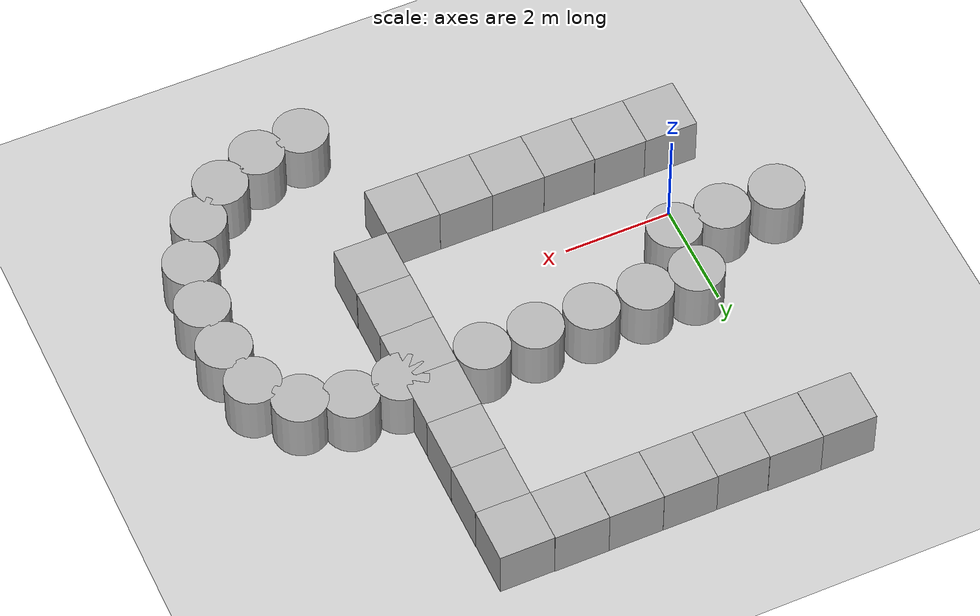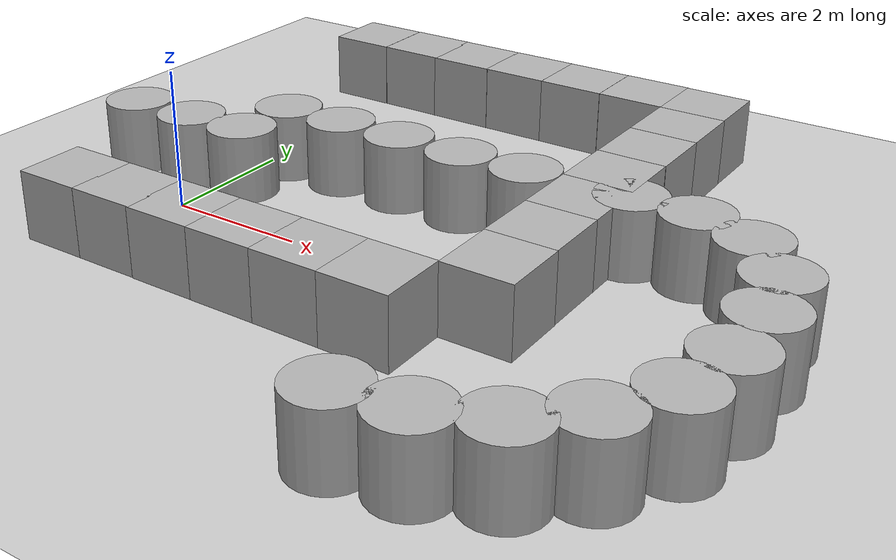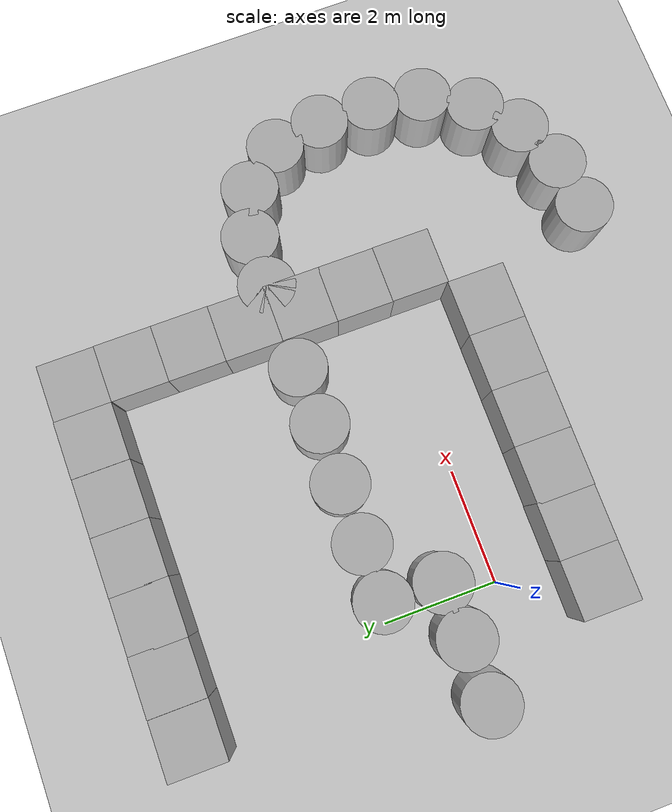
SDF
<sdf version='1.10'>
  <world name='training_world_2'>
    <physics name='1ms' type='ignored'>
      <max_step_size>0.001</max_step_size>
      <real_time_factor>1</real_time_factor>
      <real_time_update_rate>1000</real_time_update_rate>
    </physics>
    <plugin filename="gz-sim-physics-system" name="gz::sim::systems::Physics" />
    <plugin filename="gz-sim-user-commands-system" name="gz::sim::systems::UserCommands" />
    <plugin filename="gz-sim-scene-broadcaster-system" name="gz::sim::systems::SceneBroadcaster" />
    <plugin filename="gz-sim-physics-system" name="gz::sim::systems::Physics" />
    <plugin filename="gz-sim-user-commands-system" name="gz::sim::systems::UserCommands" />
    <plugin filename="gz-sim-scene-broadcaster-system" name="gz::sim::systems::SceneBroadcaster" />
    <plugin filename="gz-sim-sensors-system" name="gz::sim::systems::Sensors">
      <render_engine>ogre2</render_engine>
    </plugin>
    <gravity>0 0 -9.8000000000000007</gravity>
    <magnetic_field>5.5644999999999998e-06 2.2875799999999999e-05 -4.2388400000000002e-05</magnetic_field>
    <atmosphere type='adiabatic'/>
    <scene>
      <ambient>0.400000006 0.400000006 0.400000006 1</ambient>
      <background>0.699999988 0.699999988 0.699999988 1</background>
      <shadows>true</shadows>
    </scene>
    <model name='ground_plane'>
      <static>true</static>
      <link name='link'>
        <collision name='collision'>
          <geometry>
            <plane>
              <normal>0 0 1</normal>
              <size>100 100</size>
            </plane>
          </geometry>
          <surface>
            <friction>
              <ode/>
            </friction>
            <bounce/>
            <contact/>
          </surface>
        </collision>
        <visual name='visual'>
          <geometry>
            <plane>
              <normal>0 0 1</normal>
              <size>100 100</size>
            </plane>
          </geometry>
          <material>
            <ambient>0.800000012 0.800000012 0.800000012 1</ambient>
            <diffuse>0.800000012 0.800000012 0.800000012 1</diffuse>
            <specular>0.800000012 0.800000012 0.800000012 1</specular>
          </material>
        </visual>
        <pose>0 0 0 0 0 0</pose>
        <inertial>
          <pose>0 0 0 0 0 0</pose>
          <mass>1</mass>
          <inertia>
            <ixx>1</ixx>
            <ixy>0</ixy>
            <ixz>0</ixz>
            <iyy>1</iyy>
            <iyz>0</iyz>
            <izz>1</izz>
          </inertia>
        </inertial>
        <enable_wind>false</enable_wind>
      </link>
      <pose>0 0 0 0 0 0</pose>
      <self_collide>false</self_collide>
    </model>
    <model name='box'>
      <pose>5.4581699371337891 5.4841389656066895 0.5 0 0 0</pose>
      <link name='box_link'>
        <inertial>
          <inertia>
            <ixx>0.16666</ixx>
            <ixy>0</ixy>
            <ixz>0</ixz>
            <iyy>0.16666</iyy>
            <iyz>0</iyz>
            <izz>0.16666</izz>
          </inertia>
          <mass>1</mass>
          <pose>0 0 0 0 0 0</pose>
        </inertial>
        <collision name='box_collision'>
          <geometry>
            <box>
              <size>1 1 1</size>
            </box>
          </geometry>
          <surface>
            <friction>
              <ode/>
            </friction>
            <bounce/>
            <contact/>
          </surface>
        </collision>
        <visual name='box_visual'>
          <geometry>
            <box>
              <size>1 1 1</size>
            </box>
          </geometry>
          <material>
            <ambient>0.300000012 0.300000012 0.300000012 1</ambient>
            <diffuse>0.699999988 0.699999988 0.699999988 1</diffuse>
            <specular>1 1 1 1</specular>
          </material>
        </visual>
        <pose>0 0 0 0 0 0</pose>
        <enable_wind>false</enable_wind>
      </link>
      <static>false</static>
      <self_collide>false</self_collide>
    </model>
    <model name='box_0'>
      <pose>5.4631900787353516 4.4927797317504883 0.5 0 0 0</pose>
      <link name='box_link'>
        <inertial>
          <inertia>
            <ixx>0.16666</ixx>
            <ixy>0</ixy>
            <ixz>0</ixz>
            <iyy>0.16666</iyy>
            <iyz>0</iyz>
            <izz>0.16666</izz>
          </inertia>
          <mass>1</mass>
          <pose>0 0 0 0 0 0</pose>
        </inertial>
        <collision name='box_collision'>
          <geometry>
            <box>
              <size>1 1 1</size>
            </box>
          </geometry>
          <surface>
            <friction>
              <ode/>
            </friction>
            <bounce/>
            <contact/>
          </surface>
        </collision>
        <visual name='box_visual'>
          <geometry>
            <box>
              <size>1 1 1</size>
            </box>
          </geometry>
          <material>
            <ambient>0.300000012 0.300000012 0.300000012 1</ambient>
            <diffuse>0.699999988 0.699999988 0.699999988 1</diffuse>
            <specular>1 1 1 1</specular>
          </material>
        </visual>
        <pose>0 0 0 0 0 0</pose>
        <enable_wind>false</enable_wind>
      </link>
      <static>false</static>
      <self_collide>false</self_collide>
    </model>
    <model name='box_1'>
      <pose>5.4638900756835938 3.4942295551300049 0.5 0 0 0</pose>
      <link name='box_link'>
        <inertial>
          <inertia>
            <ixx>0.16666</ixx>
            <ixy>0</ixy>
            <ixz>0</ixz>
            <iyy>0.16666</iyy>
            <iyz>0</iyz>
            <izz>0.16666</izz>
          </inertia>
          <mass>1</mass>
          <pose>0 0 0 0 0 0</pose>
        </inertial>
        <collision name='box_collision'>
          <geometry>
            <box>
              <size>1 1 1</size>
            </box>
          </geometry>
          <surface>
            <friction>
              <ode/>
            </friction>
            <bounce/>
            <contact/>
          </surface>
        </collision>
        <visual name='box_visual'>
          <geometry>
            <box>
              <size>1 1 1</size>
            </box>
          </geometry>
          <material>
            <ambient>0.300000012 0.300000012 0.300000012 1</ambient>
            <diffuse>0.699999988 0.699999988 0.699999988 1</diffuse>
            <specular>1 1 1 1</specular>
          </material>
        </visual>
        <pose>0 0 0 0 0 0</pose>
        <enable_wind>false</enable_wind>
      </link>
      <static>false</static>
      <self_collide>false</self_collide>
    </model>
    <model name='box_2'>
      <pose>5.4597768783569336 2.4960799217224121 0.5 0 0 0</pose>
      <link name='box_link'>
        <inertial>
          <inertia>
            <ixx>0.16666</ixx>
            <ixy>0</ixy>
            <ixz>0</ixz>
            <iyy>0.16666</iyy>
            <iyz>0</iyz>
            <izz>0.16666</izz>
          </inertia>
          <mass>1</mass>
          <pose>0 0 0 0 0 0</pose>
        </inertial>
        <collision name='box_collision'>
          <geometry>
            <box>
              <size>1 1 1</size>
            </box>
          </geometry>
          <surface>
            <friction>
              <ode/>
            </friction>
            <bounce/>
            <contact/>
          </surface>
        </collision>
        <visual name='box_visual'>
          <geometry>
            <box>
              <size>1 1 1</size>
            </box>
          </geometry>
          <material>
            <ambient>0.300000012 0.300000012 0.300000012 1</ambient>
            <diffuse>0.699999988 0.699999988 0.699999988 1</diffuse>
            <specular>1 1 1 1</specular>
          </material>
        </visual>
        <pose>0 0 0 0 0 0</pose>
        <enable_wind>false</enable_wind>
      </link>
      <static>false</static>
      <self_collide>false</self_collide>
    </model>
    <model name='box_3'>
      <pose>5.4643087387084961 1.5090999603271484 0.5 0 0 0</pose>
      <link name='box_link'>
        <inertial>
          <inertia>
            <ixx>0.16666</ixx>
            <ixy>0</ixy>
            <ixz>0</ixz>
            <iyy>0.16666</iyy>
            <iyz>0</iyz>
            <izz>0.16666</izz>
          </inertia>
          <mass>1</mass>
          <pose>0 0 0 0 0 0</pose>
        </inertial>
        <collision name='box_collision'>
          <geometry>
            <box>
              <size>1 1 1</size>
            </box>
          </geometry>
          <surface>
            <friction>
              <ode/>
            </friction>
            <bounce/>
            <contact/>
          </surface>
        </collision>
        <visual name='box_visual'>
          <geometry>
            <box>
              <size>1 1 1</size>
            </box>
          </geometry>
          <material>
            <ambient>0.300000012 0.300000012 0.300000012 1</ambient>
            <diffuse>0.699999988 0.699999988 0.699999988 1</diffuse>
            <specular>1 1 1 1</specular>
          </material>
        </visual>
        <pose>0 0 0 0 0 0</pose>
        <enable_wind>false</enable_wind>
      </link>
      <static>false</static>
      <self_collide>false</self_collide>
    </model>
    <model name='box_4'>
      <pose>5.4652209281921387 0.52163499593734741 0.5 0 0 0</pose>
      <link name='box_link'>
        <inertial>
          <inertia>
            <ixx>0.16666</ixx>
            <ixy>0</ixy>
            <ixz>0</ixz>
            <iyy>0.16666</iyy>
            <iyz>0</iyz>
            <izz>0.16666</izz>
          </inertia>
          <mass>1</mass>
          <pose>0 0 0 0 0 0</pose>
        </inertial>
        <collision name='box_collision'>
          <geometry>
            <box>
              <size>1 1 1</size>
            </box>
          </geometry>
          <surface>
            <friction>
              <ode/>
            </friction>
            <bounce/>
            <contact/>
          </surface>
        </collision>
        <visual name='box_visual'>
          <geometry>
            <box>
              <size>1 1 1</size>
            </box>
          </geometry>
          <material>
            <ambient>0.300000012 0.300000012 0.300000012 1</ambient>
            <diffuse>0.699999988 0.699999988 0.699999988 1</diffuse>
            <specular>1 1 1 1</specular>
          </material>
        </visual>
        <pose>0 0 0 0 0 0</pose>
        <enable_wind>false</enable_wind>
      </link>
      <static>false</static>
      <self_collide>false</self_collide>
    </model>
    <model name='box_5'>
      <pose>5.4709596873990716 -0.4662757997056175 0.5 0 0 0</pose>
      <link name='box_link'>
        <inertial>
          <inertia>
            <ixx>0.16666</ixx>
            <ixy>0</ixy>
            <ixz>0</ixz>
            <iyy>0.16666</iyy>
            <iyz>0</iyz>
            <izz>0.16666</izz>
          </inertia>
          <mass>1</mass>
          <pose>0 0 0 0 0 0</pose>
        </inertial>
        <collision name='box_collision'>
          <geometry>
            <box>
              <size>1 1 1</size>
            </box>
          </geometry>
          <surface>
            <friction>
              <ode/>
            </friction>
            <bounce/>
            <contact/>
          </surface>
        </collision>
        <visual name='box_visual'>
          <geometry>
            <box>
              <size>1 1 1</size>
            </box>
          </geometry>
          <material>
            <ambient>0.300000012 0.300000012 0.300000012 1</ambient>
            <diffuse>0.699999988 0.699999988 0.699999988 1</diffuse>
            <specular>1 1 1 1</specular>
          </material>
        </visual>
        <pose>0 0 0 0 0 0</pose>
        <enable_wind>false</enable_wind>
      </link>
      <static>false</static>
      <self_collide>false</self_collide>
    </model>
    <model name='cylinder'>
      <pose>4.4554517501128323 1.9124957976703625 0.5 0 0 0</pose>
      <link name='cylinder_link'>
        <inertial>
          <inertia>
            <ixx>0.14580000000000001</ixx>
            <ixy>0</ixy>
            <ixz>0</ixz>
            <iyy>0.14580000000000001</iyy>
            <iyz>0</iyz>
            <izz>0.125</izz>
          </inertia>
          <mass>1</mass>
          <pose>0 0 0 0 0 0</pose>
        </inertial>
        <collision name='cylinder_collision'>
          <geometry>
            <cylinder>
              <radius>0.5</radius>
              <length>1</length>
            </cylinder>
          </geometry>
          <surface>
            <friction>
              <ode/>
            </friction>
            <bounce/>
            <contact/>
          </surface>
        </collision>
        <visual name='cylinder_visual'>
          <geometry>
            <cylinder>
              <radius>0.5</radius>
              <length>1</length>
            </cylinder>
          </geometry>
          <material>
            <ambient>0.300000012 0.300000012 0.300000012 1</ambient>
            <diffuse>0.699999988 0.699999988 0.699999988 1</diffuse>
            <specular>1 1 1 1</specular>
          </material>
        </visual>
        <pose>0 0 0 0 0 0</pose>
        <enable_wind>false</enable_wind>
      </link>
      <static>false</static>
      <self_collide>false</self_collide>
    </model>
    <model name='cylinder_0'>
      <pose>3.4485441728371855 1.8964423320753052 0.5 0 0 0</pose>
      <link name='cylinder_link'>
        <inertial>
          <inertia>
            <ixx>0.14580000000000001</ixx>
            <ixy>0</ixy>
            <ixz>0</ixz>
            <iyy>0.14580000000000001</iyy>
            <iyz>0</iyz>
            <izz>0.125</izz>
          </inertia>
          <mass>1</mass>
          <pose>0 0 0 0 0 0</pose>
        </inertial>
        <collision name='cylinder_collision'>
          <geometry>
            <cylinder>
              <radius>0.5</radius>
              <length>1</length>
            </cylinder>
          </geometry>
          <surface>
            <friction>
              <ode/>
            </friction>
            <bounce/>
            <contact/>
          </surface>
        </collision>
        <visual name='cylinder_visual'>
          <geometry>
            <cylinder>
              <radius>0.5</radius>
              <length>1</length>
            </cylinder>
          </geometry>
          <material>
            <ambient>0.300000012 0.300000012 0.300000012 1</ambient>
            <diffuse>0.699999988 0.699999988 0.699999988 1</diffuse>
            <specular>1 1 1 1</specular>
          </material>
        </visual>
        <pose>0 0 0 0 0 0</pose>
        <enable_wind>false</enable_wind>
      </link>
      <static>false</static>
      <self_collide>false</self_collide>
    </model>
    <model name='cylinder_1'>
      <pose>2.4087780615857701 1.9221750231469297 0.5 0 0 0</pose>
      <link name='cylinder_link'>
        <inertial>
          <inertia>
            <ixx>0.14580000000000001</ixx>
            <ixy>0</ixy>
            <ixz>0</ixz>
            <iyy>0.14580000000000001</iyy>
            <iyz>0</iyz>
            <izz>0.125</izz>
          </inertia>
          <mass>1</mass>
          <pose>0 0 0 0 0 0</pose>
        </inertial>
        <collision name='cylinder_collision'>
          <geometry>
            <cylinder>
              <radius>0.5</radius>
              <length>1</length>
            </cylinder>
          </geometry>
          <surface>
            <friction>
              <ode/>
            </friction>
            <bounce/>
            <contact/>
          </surface>
        </collision>
        <visual name='cylinder_visual'>
          <geometry>
            <cylinder>
              <radius>0.5</radius>
              <length>1</length>
            </cylinder>
          </geometry>
          <material>
            <ambient>0.300000012 0.300000012 0.300000012 1</ambient>
            <diffuse>0.699999988 0.699999988 0.699999988 1</diffuse>
            <specular>1 1 1 1</specular>
          </material>
        </visual>
        <pose>0 0 0 0 0 0</pose>
        <enable_wind>false</enable_wind>
      </link>
      <static>false</static>
      <self_collide>false</self_collide>
    </model>
    <model name='cylinder_2'>
      <pose>1.3868667100823853 1.925149172541003 0.5 0 0 0</pose>
      <link name='cylinder_link'>
        <inertial>
          <inertia>
            <ixx>0.14580000000000001</ixx>
            <ixy>0</ixy>
            <ixz>0</ixz>
            <iyy>0.14580000000000001</iyy>
            <iyz>0</iyz>
            <izz>0.125</izz>
          </inertia>
          <mass>1</mass>
          <pose>0 0 0 0 0 0</pose>
        </inertial>
        <collision name='cylinder_collision'>
          <geometry>
            <cylinder>
              <radius>0.5</radius>
              <length>1</length>
            </cylinder>
          </geometry>
          <surface>
            <friction>
              <ode/>
            </friction>
            <bounce/>
            <contact/>
          </surface>
        </collision>
        <visual name='cylinder_visual'>
          <geometry>
            <cylinder>
              <radius>0.5</radius>
              <length>1</length>
            </cylinder>
          </geometry>
          <material>
            <ambient>0.300000012 0.300000012 0.300000012 1</ambient>
            <diffuse>0.699999988 0.699999988 0.699999988 1</diffuse>
            <specular>1 1 1 1</specular>
          </material>
        </visual>
        <pose>0 0 0 0 0 0</pose>
        <enable_wind>false</enable_wind>
      </link>
      <static>false</static>
      <self_collide>false</self_collide>
    </model>
    <model name='cylinder_3'>
      <pose>0.41709174741181654 1.9263099474258674 0.5 0 0 0</pose>
      <link name='cylinder_link'>
        <inertial>
          <inertia>
            <ixx>0.14580000000000001</ixx>
            <ixy>0</ixy>
            <ixz>0</ixz>
            <iyy>0.14580000000000001</iyy>
            <iyz>0</iyz>
            <izz>0.125</izz>
          </inertia>
          <mass>1</mass>
          <pose>0 0 0 0 0 0</pose>
        </inertial>
        <collision name='cylinder_collision'>
          <geometry>
            <cylinder>
              <radius>0.5</radius>
              <length>1</length>
            </cylinder>
          </geometry>
          <surface>
            <friction>
              <ode/>
            </friction>
            <bounce/>
            <contact/>
          </surface>
        </collision>
        <visual name='cylinder_visual'>
          <geometry>
            <cylinder>
              <radius>0.5</radius>
              <length>1</length>
            </cylinder>
          </geometry>
          <material>
            <ambient>0.300000012 0.300000012 0.300000012 1</ambient>
            <diffuse>0.699999988 0.699999988 0.699999988 1</diffuse>
            <specular>1 1 1 1</specular>
          </material>
        </visual>
        <pose>0 0 0 0 0 0</pose>
        <enable_wind>false</enable_wind>
      </link>
      <static>false</static>
      <self_collide>false</self_collide>
    </model>
    <model name='cylinder_4'>
      <pose>0.3703391205548483 0.92730228313493457 0.5 0 0 0</pose>
      <link name='cylinder_link'>
        <inertial>
          <inertia>
            <ixx>0.14580000000000001</ixx>
            <ixy>0</ixy>
            <ixz>0</ixz>
            <iyy>0.14580000000000001</iyy>
            <iyz>0</iyz>
            <izz>0.125</izz>
          </inertia>
          <mass>1</mass>
          <pose>0 0 0 0 0 0</pose>
        </inertial>
        <collision name='cylinder_collision'>
          <geometry>
            <cylinder>
              <radius>0.5</radius>
              <length>1</length>
            </cylinder>
          </geometry>
          <surface>
            <friction>
              <ode/>
            </friction>
            <bounce/>
            <contact/>
          </surface>
        </collision>
        <visual name='cylinder_visual'>
          <geometry>
            <cylinder>
              <radius>0.5</radius>
              <length>1</length>
            </cylinder>
          </geometry>
          <material>
            <ambient>0.300000012 0.300000012 0.300000012 1</ambient>
            <diffuse>0.699999988 0.699999988 0.699999988 1</diffuse>
            <specular>1 1 1 1</specular>
          </material>
        </visual>
        <pose>0 0 0 0 0 0</pose>
        <enable_wind>false</enable_wind>
      </link>
      <static>false</static>
      <self_collide>false</self_collide>
    </model>
    <model name='cylinder_5'>
      <pose>-0.56998879777424438 0.89742481543701791 0.5 0 0 0</pose>
      <link name='cylinder_link'>
        <inertial>
          <inertia>
            <ixx>0.14580000000000001</ixx>
            <ixy>0</ixy>
            <ixz>0</ixz>
            <iyy>0.14580000000000001</iyy>
            <iyz>0</iyz>
            <izz>0.125</izz>
          </inertia>
          <mass>1</mass>
          <pose>0 0 0 0 0 0</pose>
        </inertial>
        <collision name='cylinder_collision'>
          <geometry>
            <cylinder>
              <radius>0.5</radius>
              <length>1</length>
            </cylinder>
          </geometry>
          <surface>
            <friction>
              <ode/>
            </friction>
            <bounce/>
            <contact/>
          </surface>
        </collision>
        <visual name='cylinder_visual'>
          <geometry>
            <cylinder>
              <radius>0.5</radius>
              <length>1</length>
            </cylinder>
          </geometry>
          <material>
            <ambient>0.300000012 0.300000012 0.300000012 1</ambient>
            <diffuse>0.699999988 0.699999988 0.699999988 1</diffuse>
            <specular>1 1 1 1</specular>
          </material>
        </visual>
        <pose>0 0 0 0 0 0</pose>
        <enable_wind>false</enable_wind>
      </link>
      <static>false</static>
      <self_collide>false</self_collide>
    </model>
    <model name='cylinder_6'>
      <pose>-1.6162913897672011 0.8999573448537298 0.5 0 0 0</pose>
      <link name='cylinder_link'>
        <inertial>
          <inertia>
            <ixx>0.14580000000000001</ixx>
            <ixy>0</ixy>
            <ixz>0</ixz>
            <iyy>0.14580000000000001</iyy>
            <iyz>0</iyz>
            <izz>0.125</izz>
          </inertia>
          <mass>1</mass>
          <pose>0 0 0 0 0 0</pose>
        </inertial>
        <collision name='cylinder_collision'>
          <geometry>
            <cylinder>
              <radius>0.5</radius>
              <length>1</length>
            </cylinder>
          </geometry>
          <surface>
            <friction>
              <ode/>
            </friction>
            <bounce/>
            <contact/>
          </surface>
        </collision>
        <visual name='cylinder_visual'>
          <geometry>
            <cylinder>
              <radius>0.5</radius>
              <length>1</length>
            </cylinder>
          </geometry>
          <material>
            <ambient>0.300000012 0.300000012 0.300000012 1</ambient>
            <diffuse>0.699999988 0.699999988 0.699999988 1</diffuse>
            <specular>1 1 1 1</specular>
          </material>
        </visual>
        <pose>0 0 0 0 0 0</pose>
        <enable_wind>false</enable_wind>
      </link>
      <static>false</static>
      <self_collide>false</self_collide>
    </model>
    <model name='box_6'>
      <pose>4.4648757215538062 5.493034978154796 0.5 0 0 0</pose>
      <link name='box_link'>
        <inertial>
          <inertia>
            <ixx>0.16666</ixx>
            <ixy>0</ixy>
            <ixz>0</ixz>
            <iyy>0.16666</iyy>
            <iyz>0</iyz>
            <izz>0.16666</izz>
          </inertia>
          <mass>1</mass>
          <pose>0 0 0 0 0 0</pose>
        </inertial>
        <collision name='box_collision'>
          <geometry>
            <box>
              <size>1 1 1</size>
            </box>
          </geometry>
          <surface>
            <friction>
              <ode/>
            </friction>
            <bounce/>
            <contact/>
          </surface>
        </collision>
        <visual name='box_visual'>
          <geometry>
            <box>
              <size>1 1 1</size>
            </box>
          </geometry>
          <material>
            <ambient>0.300000012 0.300000012 0.300000012 1</ambient>
            <diffuse>0.699999988 0.699999988 0.699999988 1</diffuse>
            <specular>1 1 1 1</specular>
          </material>
        </visual>
        <pose>0 0 0 0 0 0</pose>
        <enable_wind>false</enable_wind>
      </link>
      <static>false</static>
      <self_collide>false</self_collide>
    </model>
    <model name='box_7'>
      <pose>3.4632440258760084 5.4899634818289869 0.5 0 0 0</pose>
      <link name='box_link'>
        <inertial>
          <inertia>
            <ixx>0.16666</ixx>
            <ixy>0</ixy>
            <ixz>0</ixz>
            <iyy>0.16666</iyy>
            <iyz>0</iyz>
            <izz>0.16666</izz>
          </inertia>
          <mass>1</mass>
          <pose>0 0 0 0 0 0</pose>
        </inertial>
        <collision name='box_collision'>
          <geometry>
            <box>
              <size>1 1 1</size>
            </box>
          </geometry>
          <surface>
            <friction>
              <ode/>
            </friction>
            <bounce/>
            <contact/>
          </surface>
        </collision>
        <visual name='box_visual'>
          <geometry>
            <box>
              <size>1 1 1</size>
            </box>
          </geometry>
          <material>
            <ambient>0.300000012 0.300000012 0.300000012 1</ambient>
            <diffuse>0.699999988 0.699999988 0.699999988 1</diffuse>
            <specular>1 1 1 1</specular>
          </material>
        </visual>
        <pose>0 0 0 0 0 0</pose>
        <enable_wind>false</enable_wind>
      </link>
      <static>false</static>
      <self_collide>false</self_collide>
    </model>
    <model name='box_8'>
      <pose>2.4627367185550568 5.4916019275185874 0.5 0 0 0</pose>
      <link name='box_link'>
        <inertial>
          <inertia>
            <ixx>0.16666</ixx>
            <ixy>0</ixy>
            <ixz>0</ixz>
            <iyy>0.16666</iyy>
            <iyz>0</iyz>
            <izz>0.16666</izz>
          </inertia>
          <mass>1</mass>
          <pose>0 0 0 0 0 0</pose>
        </inertial>
        <collision name='box_collision'>
          <geometry>
            <box>
              <size>1 1 1</size>
            </box>
          </geometry>
          <surface>
            <friction>
              <ode/>
            </friction>
            <bounce/>
            <contact/>
          </surface>
        </collision>
        <visual name='box_visual'>
          <geometry>
            <box>
              <size>1 1 1</size>
            </box>
          </geometry>
          <material>
            <ambient>0.300000012 0.300000012 0.300000012 1</ambient>
            <diffuse>0.699999988 0.699999988 0.699999988 1</diffuse>
            <specular>1 1 1 1</specular>
          </material>
        </visual>
        <pose>0 0 0 0 0 0</pose>
        <enable_wind>false</enable_wind>
      </link>
      <static>false</static>
      <self_collide>false</self_collide>
    </model>
    <model name='box_9'>
      <pose>1.4774800539016724 5.4889726638793945 0.5 0 0 0</pose>
      <link name='box_link'>
        <inertial>
          <inertia>
            <ixx>0.16666</ixx>
            <ixy>0</ixy>
            <ixz>0</ixz>
            <iyy>0.16666</iyy>
            <iyz>0</iyz>
            <izz>0.16666</izz>
          </inertia>
          <mass>1</mass>
          <pose>0 0 0 0 0 0</pose>
        </inertial>
        <collision name='box_collision'>
          <geometry>
            <box>
              <size>1 1 1</size>
            </box>
          </geometry>
          <surface>
            <friction>
              <ode/>
            </friction>
            <bounce/>
            <contact/>
          </surface>
        </collision>
        <visual name='box_visual'>
          <geometry>
            <box>
              <size>1 1 1</size>
            </box>
          </geometry>
          <material>
            <ambient>0.300000012 0.300000012 0.300000012 1</ambient>
            <diffuse>0.699999988 0.699999988 0.699999988 1</diffuse>
            <specular>1 1 1 1</specular>
          </material>
        </visual>
        <pose>0 0 0 0 0 0</pose>
        <enable_wind>false</enable_wind>
      </link>
      <static>false</static>
      <self_collide>false</self_collide>
    </model>
    <model name='box_10'>
      <pose>0.50613301992416382 5.4943976402282715 0.5 0 0 0</pose>
      <link name='box_link'>
        <inertial>
          <inertia>
            <ixx>0.16666</ixx>
            <ixy>0</ixy>
            <ixz>0</ixz>
            <iyy>0.16666</iyy>
            <iyz>0</iyz>
            <izz>0.16666</izz>
          </inertia>
          <mass>1</mass>
          <pose>0 0 0 0 0 0</pose>
        </inertial>
        <collision name='box_collision'>
          <geometry>
            <box>
              <size>1 1 1</size>
            </box>
          </geometry>
          <surface>
            <friction>
              <ode/>
            </friction>
            <bounce/>
            <contact/>
          </surface>
        </collision>
        <visual name='box_visual'>
          <geometry>
            <box>
              <size>1 1 1</size>
            </box>
          </geometry>
          <material>
            <ambient>0.300000012 0.300000012 0.300000012 1</ambient>
            <diffuse>0.699999988 0.699999988 0.699999988 1</diffuse>
            <specular>1 1 1 1</specular>
          </material>
        </visual>
        <pose>0 0 0 0 0 0</pose>
        <enable_wind>false</enable_wind>
      </link>
      <static>false</static>
      <self_collide>false</self_collide>
    </model>
    <model name='box_11'>
      <pose>-0.49575165521187309 5.490258511836406 0.5 0 0 0</pose>
      <link name='box_link'>
        <inertial>
          <inertia>
            <ixx>0.16666</ixx>
            <ixy>0</ixy>
            <ixz>0</ixz>
            <iyy>0.16666</iyy>
            <iyz>0</iyz>
            <izz>0.16666</izz>
          </inertia>
          <mass>1</mass>
          <pose>0 0 0 0 0 0</pose>
        </inertial>
        <collision name='box_collision'>
          <geometry>
            <box>
              <size>1 1 1</size>
            </box>
          </geometry>
          <surface>
            <friction>
              <ode/>
            </friction>
            <bounce/>
            <contact/>
          </surface>
        </collision>
        <visual name='box_visual'>
          <geometry>
            <box>
              <size>1 1 1</size>
            </box>
          </geometry>
          <material>
            <ambient>0.300000012 0.300000012 0.300000012 1</ambient>
            <diffuse>0.699999988 0.699999988 0.699999988 1</diffuse>
            <specular>1 1 1 1</specular>
          </material>
        </visual>
        <pose>0 0 0 0 0 0</pose>
        <enable_wind>false</enable_wind>
      </link>
      <static>false</static>
      <self_collide>false</self_collide>
    </model>
    <model name='box_12'>
      <pose>4.4701220650239764 -1.4493213577496613 0.5 0 0 0</pose>
      <link name='box_link'>
        <inertial>
          <inertia>
            <ixx>0.16666</ixx>
            <ixy>0</ixy>
            <ixz>0</ixz>
            <iyy>0.16666</iyy>
            <iyz>0</iyz>
            <izz>0.16666</izz>
          </inertia>
          <mass>1</mass>
          <pose>0 0 0 0 0 0</pose>
        </inertial>
        <collision name='box_collision'>
          <geometry>
            <box>
              <size>1 1 1</size>
            </box>
          </geometry>
          <surface>
            <friction>
              <ode/>
            </friction>
            <bounce/>
            <contact/>
          </surface>
        </collision>
        <visual name='box_visual'>
          <geometry>
            <box>
              <size>1 1 1</size>
            </box>
          </geometry>
          <material>
            <ambient>0.300000012 0.300000012 0.300000012 1</ambient>
            <diffuse>0.699999988 0.699999988 0.699999988 1</diffuse>
            <specular>1 1 1 1</specular>
          </material>
        </visual>
        <pose>0 0 0 0 0 0</pose>
        <enable_wind>false</enable_wind>
      </link>
      <static>false</static>
      <self_collide>false</self_collide>
    </model>
    <model name='box_13'>
      <pose>3.4760717579270262 -1.4474628249597354 0.5 0 0 0</pose>
      <link name='box_link'>
        <inertial>
          <inertia>
            <ixx>0.16666</ixx>
            <ixy>0</ixy>
            <ixz>0</ixz>
            <iyy>0.16666</iyy>
            <iyz>0</iyz>
            <izz>0.16666</izz>
          </inertia>
          <mass>1</mass>
          <pose>0 0 0 0 0 0</pose>
        </inertial>
        <collision name='box_collision'>
          <geometry>
            <box>
              <size>1 1 1</size>
            </box>
          </geometry>
          <surface>
            <friction>
              <ode/>
            </friction>
            <bounce/>
            <contact/>
          </surface>
        </collision>
        <visual name='box_visual'>
          <geometry>
            <box>
              <size>1 1 1</size>
            </box>
          </geometry>
          <material>
            <ambient>0.300000012 0.300000012 0.300000012 1</ambient>
            <diffuse>0.699999988 0.699999988 0.699999988 1</diffuse>
            <specular>1 1 1 1</specular>
          </material>
        </visual>
        <pose>0 0 0 0 0 0</pose>
        <enable_wind>false</enable_wind>
      </link>
      <static>false</static>
      <self_collide>false</self_collide>
    </model>
    <model name='box_14'>
      <pose>2.4810590108773409 -1.4457981040525847 0.5 0 0 0</pose>
      <link name='box_link'>
        <inertial>
          <inertia>
            <ixx>0.16666</ixx>
            <ixy>0</ixy>
            <ixz>0</ixz>
            <iyy>0.16666</iyy>
            <iyz>0</iyz>
            <izz>0.16666</izz>
          </inertia>
          <mass>1</mass>
          <pose>0 0 0 0 0 0</pose>
        </inertial>
        <collision name='box_collision'>
          <geometry>
            <box>
              <size>1 1 1</size>
            </box>
          </geometry>
          <surface>
            <friction>
              <ode/>
            </friction>
            <bounce/>
            <contact/>
          </surface>
        </collision>
        <visual name='box_visual'>
          <geometry>
            <box>
              <size>1 1 1</size>
            </box>
          </geometry>
          <material>
            <ambient>0.300000012 0.300000012 0.300000012 1</ambient>
            <diffuse>0.699999988 0.699999988 0.699999988 1</diffuse>
            <specular>1 1 1 1</specular>
          </material>
        </visual>
        <pose>0 0 0 0 0 0</pose>
        <enable_wind>false</enable_wind>
      </link>
      <static>false</static>
      <self_collide>false</self_collide>
    </model>
    <model name='box_15'>
      <pose>1.4872620468490354 -1.4444277144667113 0.5 0 0 0</pose>
      <link name='box_link'>
        <inertial>
          <inertia>
            <ixx>0.16666</ixx>
            <ixy>0</ixy>
            <ixz>0</ixz>
            <iyy>0.16666</iyy>
            <iyz>0</iyz>
            <izz>0.16666</izz>
          </inertia>
          <mass>1</mass>
          <pose>0 0 0 0 0 0</pose>
        </inertial>
        <collision name='box_collision'>
          <geometry>
            <box>
              <size>1 1 1</size>
            </box>
          </geometry>
          <surface>
            <friction>
              <ode/>
            </friction>
            <bounce/>
            <contact/>
          </surface>
        </collision>
        <visual name='box_visual'>
          <geometry>
            <box>
              <size>1 1 1</size>
            </box>
          </geometry>
          <material>
            <ambient>0.300000012 0.300000012 0.300000012 1</ambient>
            <diffuse>0.699999988 0.699999988 0.699999988 1</diffuse>
            <specular>1 1 1 1</specular>
          </material>
        </visual>
        <pose>0 0 0 0 0 0</pose>
        <enable_wind>false</enable_wind>
      </link>
      <static>false</static>
      <self_collide>false</self_collide>
    </model>
    <model name='box_16'>
      <pose>0.51924043017962451 -1.43598844103158 0.5 0 0 0</pose>
      <link name='box_link'>
        <inertial>
          <inertia>
            <ixx>0.16666</ixx>
            <ixy>0</ixy>
            <ixz>0</ixz>
            <iyy>0.16666</iyy>
            <iyz>0</iyz>
            <izz>0.16666</izz>
          </inertia>
          <mass>1</mass>
          <pose>0 0 0 0 0 0</pose>
        </inertial>
        <collision name='box_collision'>
          <geometry>
            <box>
              <size>1 1 1</size>
            </box>
          </geometry>
          <surface>
            <friction>
              <ode/>
            </friction>
            <bounce/>
            <contact/>
          </surface>
        </collision>
        <visual name='box_visual'>
          <geometry>
            <box>
              <size>1 1 1</size>
            </box>
          </geometry>
          <material>
            <ambient>0.300000012 0.300000012 0.300000012 1</ambient>
            <diffuse>0.699999988 0.699999988 0.699999988 1</diffuse>
            <specular>1 1 1 1</specular>
          </material>
        </visual>
        <pose>0 0 0 0 0 0</pose>
        <enable_wind>false</enable_wind>
      </link>
      <static>false</static>
      <self_collide>false</self_collide>
    </model>
    <model name='box_17'>
      <pose>-0.45727408723703944 -1.4349930596468239 0.5 0 0 0</pose>
      <link name='box_link'>
        <inertial>
          <inertia>
            <ixx>0.16666</ixx>
            <ixy>0</ixy>
            <ixz>0</ixz>
            <iyy>0.16666</iyy>
            <iyz>0</iyz>
            <izz>0.16666</izz>
          </inertia>
          <mass>1</mass>
          <pose>0 0 0 0 0 0</pose>
        </inertial>
        <collision name='box_collision'>
          <geometry>
            <box>
              <size>1 1 1</size>
            </box>
          </geometry>
          <surface>
            <friction>
              <ode/>
            </friction>
            <bounce/>
            <contact/>
          </surface>
        </collision>
        <visual name='box_visual'>
          <geometry>
            <box>
              <size>1 1 1</size>
            </box>
          </geometry>
          <material>
            <ambient>0.300000012 0.300000012 0.300000012 1</ambient>
            <diffuse>0.699999988 0.699999988 0.699999988 1</diffuse>
            <specular>1 1 1 1</specular>
          </material>
        </visual>
        <pose>0 0 0 0 0 0</pose>
        <enable_wind>false</enable_wind>
      </link>
      <static>false</static>
      <self_collide>false</self_collide>
    </model>
    <model name='cylinder_7'>
      <pose>5.9790610234071027 1.9281606899323274 0.5 0 0 0</pose>
      <link name='cylinder_link'>
        <inertial>
          <inertia>
            <ixx>0.14580000000000001</ixx>
            <ixy>0</ixy>
            <ixz>0</ixz>
            <iyy>0.14580000000000001</iyy>
            <iyz>0</iyz>
            <izz>0.125</izz>
          </inertia>
          <mass>1</mass>
          <pose>0 0 0 0 0 0</pose>
        </inertial>
        <collision name='cylinder_collision'>
          <geometry>
            <cylinder>
              <radius>0.5</radius>
              <length>1</length>
            </cylinder>
          </geometry>
          <surface>
            <friction>
              <ode/>
            </friction>
            <bounce/>
            <contact/>
          </surface>
        </collision>
        <visual name='cylinder_visual'>
          <geometry>
            <cylinder>
              <radius>0.5</radius>
              <length>1</length>
            </cylinder>
          </geometry>
          <material>
            <ambient>0.300000012 0.300000012 0.300000012 1</ambient>
            <diffuse>0.699999988 0.699999988 0.699999988 1</diffuse>
            <specular>1 1 1 1</specular>
          </material>
        </visual>
        <pose>0 0 0 0 0 0</pose>
        <enable_wind>false</enable_wind>
      </link>
      <static>false</static>
      <self_collide>false</self_collide>
    </model>
    <model name='cylinder_8'>
      <pose>6.8813519945463391 1.9132167783913716 0.5 0 0 0</pose>
      <link name='cylinder_link'>
        <inertial>
          <inertia>
            <ixx>0.14580000000000001</ixx>
            <ixy>0</ixy>
            <ixz>0</ixz>
            <iyy>0.14580000000000001</iyy>
            <iyz>0</iyz>
            <izz>0.125</izz>
          </inertia>
          <mass>1</mass>
          <pose>0 0 0 0 0 0</pose>
        </inertial>
        <collision name='cylinder_collision'>
          <geometry>
            <cylinder>
              <radius>0.5</radius>
              <length>1</length>
            </cylinder>
          </geometry>
          <surface>
            <friction>
              <ode/>
            </friction>
            <bounce/>
            <contact/>
          </surface>
        </collision>
        <visual name='cylinder_visual'>
          <geometry>
            <cylinder>
              <radius>0.5</radius>
              <length>1</length>
            </cylinder>
          </geometry>
          <material>
            <ambient>0.300000012 0.300000012 0.300000012 1</ambient>
            <diffuse>0.699999988 0.699999988 0.699999988 1</diffuse>
            <specular>1 1 1 1</specular>
          </material>
        </visual>
        <pose>0 0 0 0 0 0</pose>
        <enable_wind>false</enable_wind>
      </link>
      <static>false</static>
      <self_collide>false</self_collide>
    </model>
    <model name='cylinder_9'>
      <pose>7.7024057260260976 1.6326518596098292 0.5 0 0 0</pose>
      <link name='cylinder_link'>
        <inertial>
          <inertia>
            <ixx>0.14580000000000001</ixx>
            <ixy>0</ixy>
            <ixz>0</ixz>
            <iyy>0.14580000000000001</iyy>
            <iyz>0</iyz>
            <izz>0.125</izz>
          </inertia>
          <mass>1</mass>
          <pose>0 0 0 0 0 0</pose>
        </inertial>
        <collision name='cylinder_collision'>
          <geometry>
            <cylinder>
              <radius>0.5</radius>
              <length>1</length>
            </cylinder>
          </geometry>
          <surface>
            <friction>
              <ode/>
            </friction>
            <bounce/>
            <contact/>
          </surface>
        </collision>
        <visual name='cylinder_visual'>
          <geometry>
            <cylinder>
              <radius>0.5</radius>
              <length>1</length>
            </cylinder>
          </geometry>
          <material>
            <ambient>0.300000012 0.300000012 0.300000012 1</ambient>
            <diffuse>0.699999988 0.699999988 0.699999988 1</diffuse>
            <specular>1 1 1 1</specular>
          </material>
        </visual>
        <pose>0 0 0 0 0 0</pose>
        <enable_wind>false</enable_wind>
      </link>
      <static>false</static>
      <self_collide>false</self_collide>
    </model>
    <model name='cylinder_10'>
      <pose>8.2877856533881893 0.96280182909765077 0.5 0 0 0</pose>
      <link name='cylinder_link'>
        <inertial>
          <inertia>
            <ixx>0.14580000000000001</ixx>
            <ixy>0</ixy>
            <ixz>0</ixz>
            <iyy>0.14580000000000001</iyy>
            <iyz>0</iyz>
            <izz>0.125</izz>
          </inertia>
          <mass>1</mass>
          <pose>0 0 0 0 0 0</pose>
        </inertial>
        <collision name='cylinder_collision'>
          <geometry>
            <cylinder>
              <radius>0.5</radius>
              <length>1</length>
            </cylinder>
          </geometry>
          <surface>
            <friction>
              <ode/>
            </friction>
            <bounce/>
            <contact/>
          </surface>
        </collision>
        <visual name='cylinder_visual'>
          <geometry>
            <cylinder>
              <radius>0.5</radius>
              <length>1</length>
            </cylinder>
          </geometry>
          <material>
            <ambient>0.300000012 0.300000012 0.300000012 1</ambient>
            <diffuse>0.699999988 0.699999988 0.699999988 1</diffuse>
            <specular>1 1 1 1</specular>
          </material>
        </visual>
        <pose>0 0 0 0 0 0</pose>
        <enable_wind>false</enable_wind>
      </link>
      <static>false</static>
      <self_collide>false</self_collide>
    </model>
    <model name='cylinder_11'>
      <pose>8.451362858628432 0.084035038012986174 0.5 0 0 0</pose>
      <link name='cylinder_link'>
        <inertial>
          <inertia>
            <ixx>0.14580000000000001</ixx>
            <ixy>0</ixy>
            <ixz>0</ixz>
            <iyy>0.14580000000000001</iyy>
            <iyz>0</iyz>
            <izz>0.125</izz>
          </inertia>
          <mass>1</mass>
          <pose>0 0 0 0 0 0</pose>
        </inertial>
        <collision name='cylinder_collision'>
          <geometry>
            <cylinder>
              <radius>0.5</radius>
              <length>1</length>
            </cylinder>
          </geometry>
          <surface>
            <friction>
              <ode/>
            </friction>
            <bounce/>
            <contact/>
          </surface>
        </collision>
        <visual name='cylinder_visual'>
          <geometry>
            <cylinder>
              <radius>0.5</radius>
              <length>1</length>
            </cylinder>
          </geometry>
          <material>
            <ambient>0.300000012 0.300000012 0.300000012 1</ambient>
            <diffuse>0.699999988 0.699999988 0.699999988 1</diffuse>
            <specular>1 1 1 1</specular>
          </material>
        </visual>
        <pose>0 0 0 0 0 0</pose>
        <enable_wind>false</enable_wind>
      </link>
      <static>false</static>
      <self_collide>false</self_collide>
    </model>
    <model name='cylinder_12'>
      <pose>8.4604493061373933 -0.86845205171622597 0.5 0 0 0</pose>
      <link name='cylinder_link'>
        <inertial>
          <inertia>
            <ixx>0.14580000000000001</ixx>
            <ixy>0</ixy>
            <ixz>0</ixz>
            <iyy>0.14580000000000001</iyy>
            <iyz>0</iyz>
            <izz>0.125</izz>
          </inertia>
          <mass>1</mass>
          <pose>0 0 0 0 0 0</pose>
        </inertial>
        <collision name='cylinder_collision'>
          <geometry>
            <cylinder>
              <radius>0.5</radius>
              <length>1</length>
            </cylinder>
          </geometry>
          <surface>
            <friction>
              <ode/>
            </friction>
            <bounce/>
            <contact/>
          </surface>
        </collision>
        <visual name='cylinder_visual'>
          <geometry>
            <cylinder>
              <radius>0.5</radius>
              <length>1</length>
            </cylinder>
          </geometry>
          <material>
            <ambient>0.300000012 0.300000012 0.300000012 1</ambient>
            <diffuse>0.699999988 0.699999988 0.699999988 1</diffuse>
            <specular>1 1 1 1</specular>
          </material>
        </visual>
        <pose>0 0 0 0 0 0</pose>
        <enable_wind>false</enable_wind>
      </link>
      <static>false</static>
      <self_collide>false</self_collide>
    </model>
    <model name='cylinder_13'>
      <pose>8.3059593311064805 -1.780431214270763 0.5 0 0 0</pose>
      <link name='cylinder_link'>
        <inertial>
          <inertia>
            <ixx>0.14580000000000001</ixx>
            <ixy>0</ixy>
            <ixz>0</ixz>
            <iyy>0.14580000000000001</iyy>
            <iyz>0</iyz>
            <izz>0.125</izz>
          </inertia>
          <mass>1</mass>
          <pose>0 0 0 0 0 0</pose>
        </inertial>
        <collision name='cylinder_collision'>
          <geometry>
            <cylinder>
              <radius>0.5</radius>
              <length>1</length>
            </cylinder>
          </geometry>
          <surface>
            <friction>
              <ode/>
            </friction>
            <bounce/>
            <contact/>
          </surface>
        </collision>
        <visual name='cylinder_visual'>
          <geometry>
            <cylinder>
              <radius>0.5</radius>
              <length>1</length>
            </cylinder>
          </geometry>
          <material>
            <ambient>0.300000012 0.300000012 0.300000012 1</ambient>
            <diffuse>0.699999988 0.699999988 0.699999988 1</diffuse>
            <specular>1 1 1 1</specular>
          </material>
        </visual>
        <pose>0 0 0 0 0 0</pose>
        <enable_wind>false</enable_wind>
      </link>
      <static>false</static>
      <self_collide>false</self_collide>
    </model>
    <model name='cylinder_14'>
      <pose>7.822447669573144 -2.5853451192599968 0.5 0 0 0</pose>
      <link name='cylinder_link'>
        <inertial>
          <inertia>
            <ixx>0.14580000000000001</ixx>
            <ixy>0</ixy>
            <ixz>0</ixz>
            <iyy>0.14580000000000001</iyy>
            <iyz>0</iyz>
            <izz>0.125</izz>
          </inertia>
          <mass>1</mass>
          <pose>0 0 0 0 0 0</pose>
        </inertial>
        <collision name='cylinder_collision'>
          <geometry>
            <cylinder>
              <radius>0.5</radius>
              <length>1</length>
            </cylinder>
          </geometry>
          <surface>
            <friction>
              <ode/>
            </friction>
            <bounce/>
            <contact/>
          </surface>
        </collision>
        <visual name='cylinder_visual'>
          <geometry>
            <cylinder>
              <radius>0.5</radius>
              <length>1</length>
            </cylinder>
          </geometry>
          <material>
            <ambient>0.300000012 0.300000012 0.300000012 1</ambient>
            <diffuse>0.699999988 0.699999988 0.699999988 1</diffuse>
            <specular>1 1 1 1</specular>
          </material>
        </visual>
        <pose>0 0 0 0 0 0</pose>
        <enable_wind>false</enable_wind>
      </link>
      <static>false</static>
      <self_collide>false</self_collide>
    </model>
    <model name='cylinder_15'>
      <pose>7.1779664013813154 -3.1720479968674669 0.5 0 0 0</pose>
      <link name='cylinder_link'>
        <inertial>
          <inertia>
            <ixx>0.14580000000000001</ixx>
            <ixy>0</ixy>
            <ixz>0</ixz>
            <iyy>0.14580000000000001</iyy>
            <iyz>0</iyz>
            <izz>0.125</izz>
          </inertia>
          <mass>1</mass>
          <pose>0 0 0 0 0 0</pose>
        </inertial>
        <collision name='cylinder_collision'>
          <geometry>
            <cylinder>
              <radius>0.5</radius>
              <length>1</length>
            </cylinder>
          </geometry>
          <surface>
            <friction>
              <ode/>
            </friction>
            <bounce/>
            <contact/>
          </surface>
        </collision>
        <visual name='cylinder_visual'>
          <geometry>
            <cylinder>
              <radius>0.5</radius>
              <length>1</length>
            </cylinder>
          </geometry>
          <material>
            <ambient>0.300000012 0.300000012 0.300000012 1</ambient>
            <diffuse>0.699999988 0.699999988 0.699999988 1</diffuse>
            <specular>1 1 1 1</specular>
          </material>
        </visual>
        <pose>0 0 0 0 0 0</pose>
        <enable_wind>false</enable_wind>
      </link>
      <static>false</static>
      <self_collide>false</self_collide>
    </model>
    <model name='cylinder_16'>
      <pose>6.3456972997633088 -3.5281656977545381 0.5 0 0 0</pose>
      <link name='cylinder_link'>
        <inertial>
          <inertia>
            <ixx>0.14580000000000001</ixx>
            <ixy>0</ixy>
            <ixz>0</ixz>
            <iyy>0.14580000000000001</iyy>
            <iyz>0</iyz>
            <izz>0.125</izz>
          </inertia>
          <mass>1</mass>
          <pose>0 0 0 0 0 0</pose>
        </inertial>
        <collision name='cylinder_collision'>
          <geometry>
            <cylinder>
              <radius>0.5</radius>
              <length>1</length>
            </cylinder>
          </geometry>
          <surface>
            <friction>
              <ode/>
            </friction>
            <bounce/>
            <contact/>
          </surface>
        </collision>
        <visual name='cylinder_visual'>
          <geometry>
            <cylinder>
              <radius>0.5</radius>
              <length>1</length>
            </cylinder>
          </geometry>
          <material>
            <ambient>0.300000012 0.300000012 0.300000012 1</ambient>
            <diffuse>0.699999988 0.699999988 0.699999988 1</diffuse>
            <specular>1 1 1 1</specular>
          </material>
        </visual>
        <pose>0 0 0 0 0 0</pose>
        <enable_wind>false</enable_wind>
      </link>
      <static>false</static>
      <self_collide>false</self_collide>
    </model>
    <model name='cylinder_17'>
      <pose>5.4541291149587092 -3.65407091030713 0.5 0 0 0</pose>
      <link name='cylinder_link'>
        <inertial>
          <inertia>
            <ixx>0.14580000000000001</ixx>
            <ixy>0</ixy>
            <ixz>0</ixz>
            <iyy>0.14580000000000001</iyy>
            <iyz>0</iyz>
            <izz>0.125</izz>
          </inertia>
          <mass>1</mass>
          <pose>0 0 0 0 0 0</pose>
        </inertial>
        <collision name='cylinder_collision'>
          <geometry>
            <cylinder>
              <radius>0.5</radius>
              <length>1</length>
            </cylinder>
          </geometry>
          <surface>
            <friction>
              <ode/>
            </friction>
            <bounce/>
            <contact/>
          </surface>
        </collision>
        <visual name='cylinder_visual'>
          <geometry>
            <cylinder>
              <radius>0.5</radius>
              <length>1</length>
            </cylinder>
          </geometry>
          <material>
            <ambient>0.300000012 0.300000012 0.300000012 1</ambient>
            <diffuse>0.699999988 0.699999988 0.699999988 1</diffuse>
            <specular>1 1 1 1</specular>
          </material>
        </visual>
        <pose>0 0 0 0 0 0</pose>
        <enable_wind>false</enable_wind>
      </link>
      <static>false</static>
      <self_collide>false</self_collide>
    </model>
    <light name='sun' type='directional'>
      <pose>0 0 10 0 0 0</pose>
      <cast_shadows>true</cast_shadows>
      <intensity>1</intensity>
      <direction>-0.5 0.10000000000000001 -0.90000000000000002</direction>
      <diffuse>0.800000012 0.800000012 0.800000012 1</diffuse>
      <specular>0.200000003 0.200000003 0.200000003 1</specular>
      <attenuation>
        <range>1000</range>
        <linear>0.01</linear>
        <constant>0.90000000000000002</constant>
        <quadratic>0.001</quadratic>
      </attenuation>
      <spot>
        <inner_angle>0</inner_angle>
        <outer_angle>0</outer_angle>
        <falloff>0</falloff>
      </spot>
    </light>
  </world>
</sdf>
